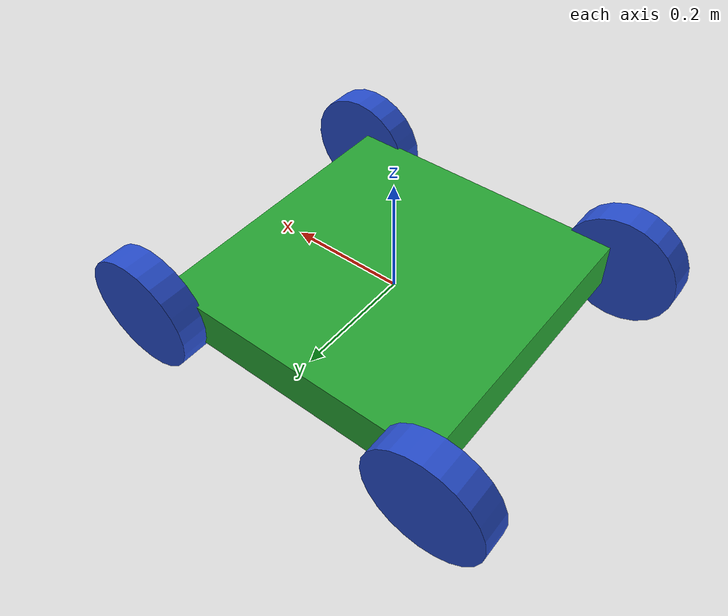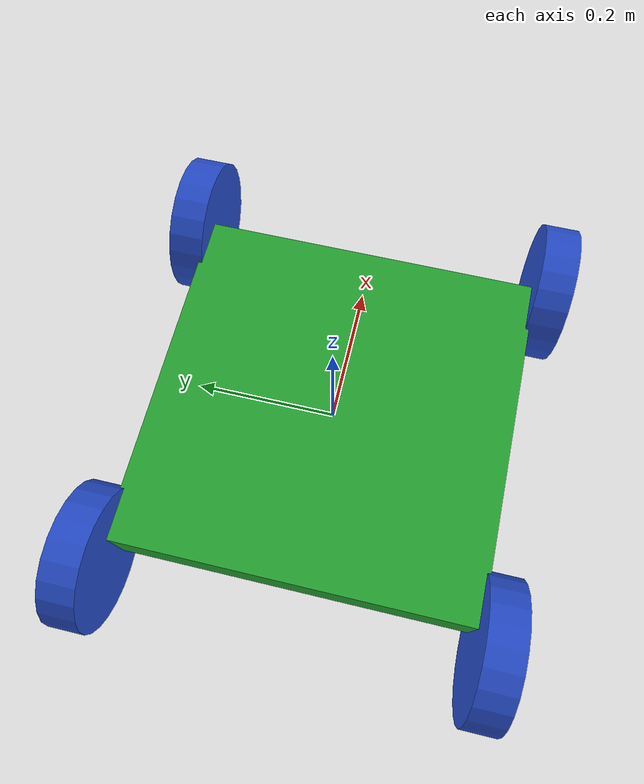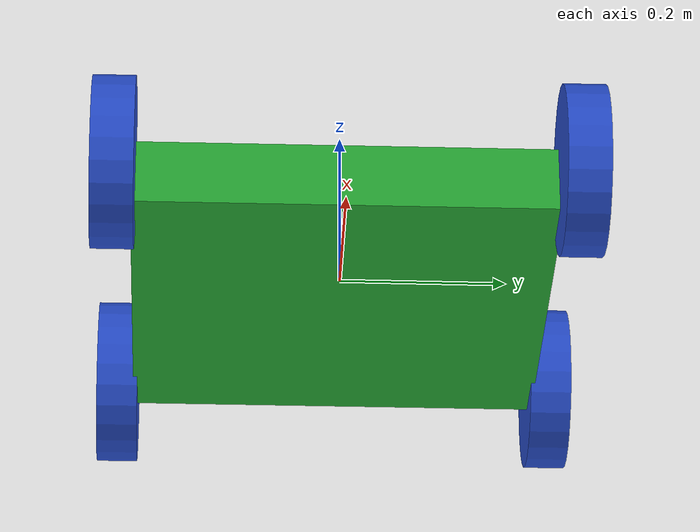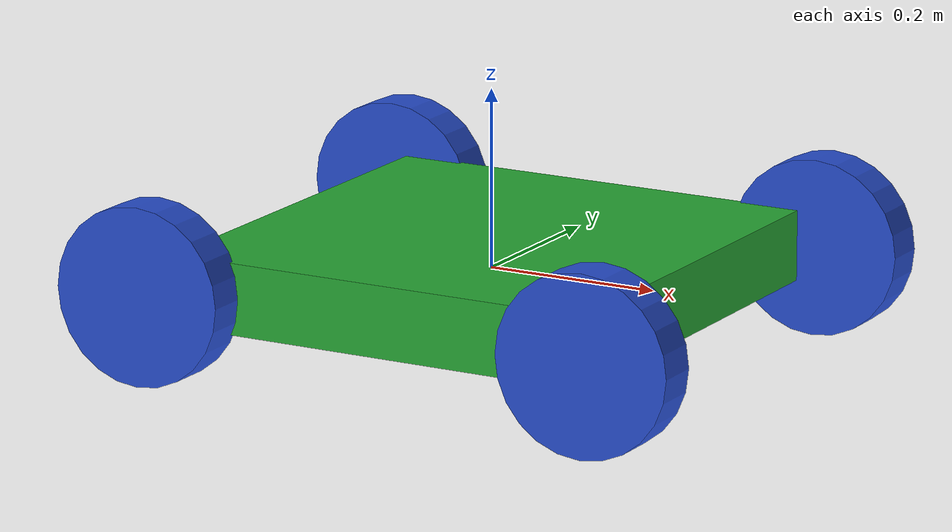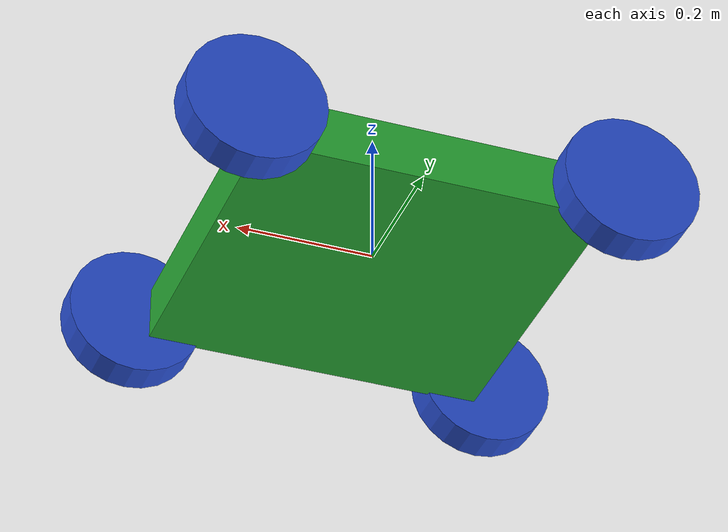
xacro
<?xml version="1.0" ?>

<robot name="skidsteer" xmlns:xacro="http://www.ros.org/wiki/xacro">

  <gazebo reference="link_chassis">
    <material>Gazebo/Green</material>
  </gazebo>
  <gazebo reference="link_front_right_wheel">
    <material>Gazebo/Blue</material>
  </gazebo>
  <gazebo reference="link_front_left_wheel">
    <material>Gazebo/Blue</material>
  </gazebo>
  <gazebo reference="link_back_right_wheel">
    <material>Gazebo/Blue</material>
  </gazebo>
  <gazebo reference="link_back_left_wheel">
    <material>Gazebo/Blue</material>
  </gazebo>

  <gazebo>
      <plugin name="skid_steer_drive_controller" filename="libgazebo_ros_skid_steer_drive.so">
      <updateRate>100.0</updateRate>
      <robotNamespace>/</robotNamespace>
      <leftFrontJoint>front_left_wheel_joint</leftFrontJoint>
      <rightFrontJoint>front_right_wheel_joint</rightFrontJoint>
      <leftRearJoint>back_left_wheel_joint</leftRearJoint>
      <rightRearJoint>back_right_wheel_joint</rightRearJoint>
      <wheelSeparation>0.3</wheelSeparation>
      <wheelDiameter>0.2</wheelDiameter>
      <robotBaseFrame>base_link</robotBaseFrame>
      <torque>20</torque>
      <topicName>cmd_vel</topicName>
      <broadcastTF>false</broadcastTF>
    </plugin>
  </gazebo>

  <link name="link_chassis">
    <!-- pose and inertial -->
    <pose>0 0 0.1 0 0 0</pose>
    <inertial>
      <mass value="5"/>
      <origin rpy="0 0 0" xyz="0 0 0.1"/>
      <inertia ixx="0.40833333333333" ixy="0" ixz="0" iyy="0.24166666666667"
        iyz="0" izz="0.24166666666667"/>
    </inertial>
    <!-- body -->
    <collision name="collision_chassis">
      <geometry>
        <box size="0.5 0.5 0.08"/>
      </geometry>
    </collision>
    <visual>
      <origin rpy="0 0 0" xyz="0 0 0"/>
      <geometry>
        <box size="0.5 0.5 0.08"/>
      </geometry>
      <material name="green"/>
    </visual>
  </link>

  <!-- defining wheels -->

  <link name="link_front_right_wheel">
    <inertial>
      <mass value="0.2"/>
      <origin rpy="0 1.5707 1.5707" xyz="0 0 0"/>
      <inertia ixx="0.0126666666666667" ixy="0" ixz="0" iyy="0.0126666666666667"
        iyz="0" izz="0.025"/>
    </inertial>
    <collision name="link_front_right_wheel_collision">
      <origin rpy="0 1.5707 1.5707" xyz="0 0 0"/>
    <geometry>
      <cylinder length="0.05" radius="0.1"/>
    </geometry>
    </collision>
    <visual name="link_front_right_wheel_visual">
      <origin rpy="0 1.5707 1.5707" xyz="0 0 0"/>
    <geometry>
      <cylinder length="0.05" radius="0.1"/>
    </geometry>
    </visual>
  </link>

  <link name="link_front_left_wheel">
    <inertial>
      <mass value="0.2"/>
      <origin rpy="0 1.5707 1.5707" xyz="0 0 0"/>
      <inertia ixx="0.0126666666666667" ixy="0" ixz="0" iyy="0.0126666666666667"
        iyz="0" izz="0.025"/>
    </inertial>
    <collision name="link_front_left_wheel_collision">
      <origin rpy="0 1.5707 1.5707" xyz="0 0 0"/>
    <geometry>
      <cylinder length="0.05" radius="0.1"/>
    </geometry>
    </collision>
    <visual name="link_front_left_wheel_visual">
      <origin rpy="0 1.5707 1.5707" xyz="0 0 0"/>
    <geometry>
      <cylinder length="0.05" radius="0.1"/>
    </geometry>
    </visual>
  </link>

  <link name="link_back_right_wheel">
    <inertial>
      <mass value="0.2"/>
      <origin rpy="0 1.5707 1.5707" xyz="0 0 0"/>
      <inertia ixx="0.0126666666666667" ixy="0" ixz="0" iyy="0.0126666666666667"
        iyz="0" izz="0.025"/>
    </inertial>
    <collision name="link_back_right_wheel_collision">
      <origin rpy="0 1.5707 1.5707" xyz="0 0 0"/>
    <geometry>
      <cylinder length="0.05" radius="0.1"/>
    </geometry>
    </collision>
    <visual name="link_back_right_wheel_visual">
      <origin rpy="0 1.5707 1.5707" xyz="0 0 0"/>
    <geometry>
      <cylinder length="0.05" radius="0.1"/>
    </geometry>
    </visual>
  </link>

  <link name="link_back_left_wheel">
    <inertial>
      <mass value="0.2"/>
      <origin rpy="0 1.5707 1.5707" xyz="0 0 0"/>
      <inertia ixx="0.0126666666666667" ixy="0" ixz="0" iyy="0.0126666666666667"
        iyz="0" izz="0.025"/>
    </inertial>
    <collision name="link_back_left_wheel_collision">
      <origin rpy="0 1.5707 1.5707" xyz="0 0 0"/>
    <geometry>
      <cylinder length="0.05" radius="0.1"/>
    </geometry>
    </collision>
    <visual name="link_back_left_wheel_visual">
      <origin rpy="0 1.5707 1.5707" xyz="0 0 0"/>
    <geometry>
      <cylinder length="0.05" radius="0.1"/>
    </geometry>
    </visual>
  </link>

  <!-- defining joints -->

  <joint name="front_right_wheel_joint" type="continuous">
    <origin rpy="0 0 0" xyz="0.27 0.27 0"/>
    <child link="link_front_right_wheel"/>
    <parent link="link_chassis"/>
    <axis rpy="0 0 0" xyz="0 1 0"/>
    <limit effort="100" velocity="1"/>
    <joint_properties damping="1.0" friction="1.0"/>
  </joint>

  <joint name="front_left_wheel_joint" type="continuous">
    <origin rpy="0 0 0" xyz="0.27 -0.27 0"/>
    <child link="link_front_left_wheel"/>
    <parent link="link_chassis"/>
    <axis rpy="0 0 0" xyz="0 1 0"/>
    <limit effort="100" velocity="1"/>
    <joint_properties damping="1.0" friction="1.0"/>
  </joint>

  <joint name="back_right_wheel_joint" type="continuous">
    <origin rpy="0 0 0" xyz="-0.27 0.27 0"/>
    <child link="link_back_right_wheel"/>
    <parent link="link_chassis"/>
    <axis rpy="0 0 0" xyz="0 1 0"/>
    <limit effort="100" velocity="1"/>
    <joint_properties damping="1.0" friction="1.0"/>
  </joint>

  <joint name="back_left_wheel_joint" type="continuous">
    <origin rpy="0 0 0" xyz="-0.27 -0.27 0"/>
    <child link="link_back_left_wheel"/>
    <parent link="link_chassis"/>
    <axis rpy="0 0 0" xyz="0 1 0"/>
    <limit effort="100" velocity="1"/>
    <joint_properties damping="1.0" friction="1.0"/>
  </joint>

</robot>
